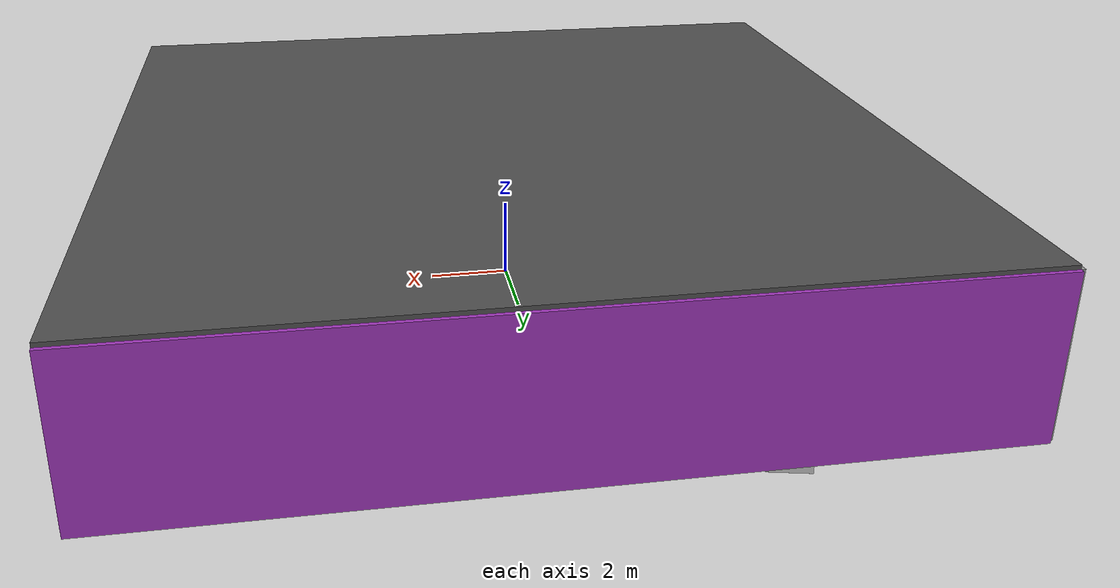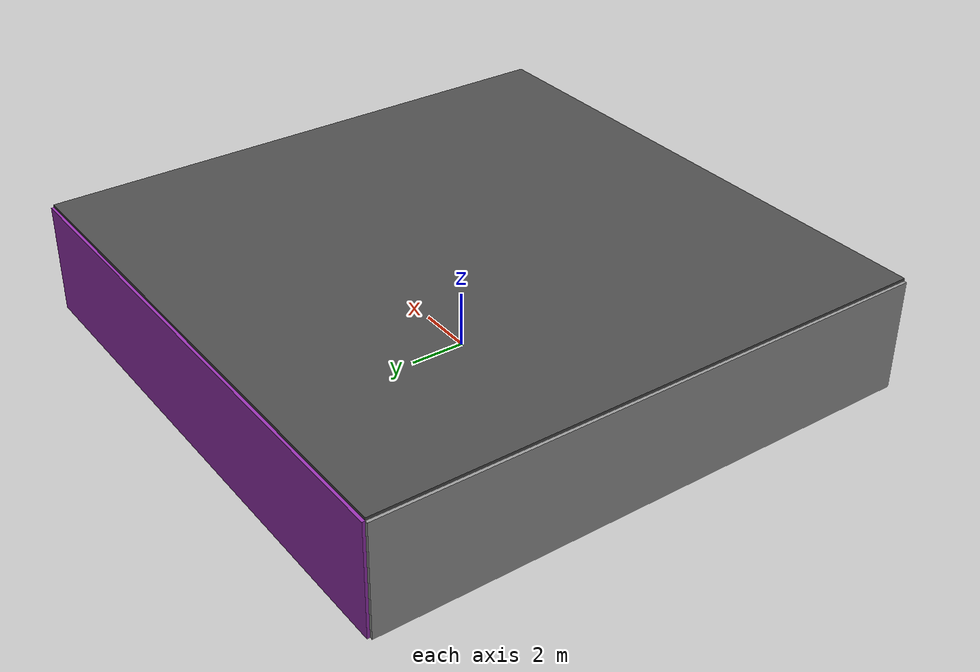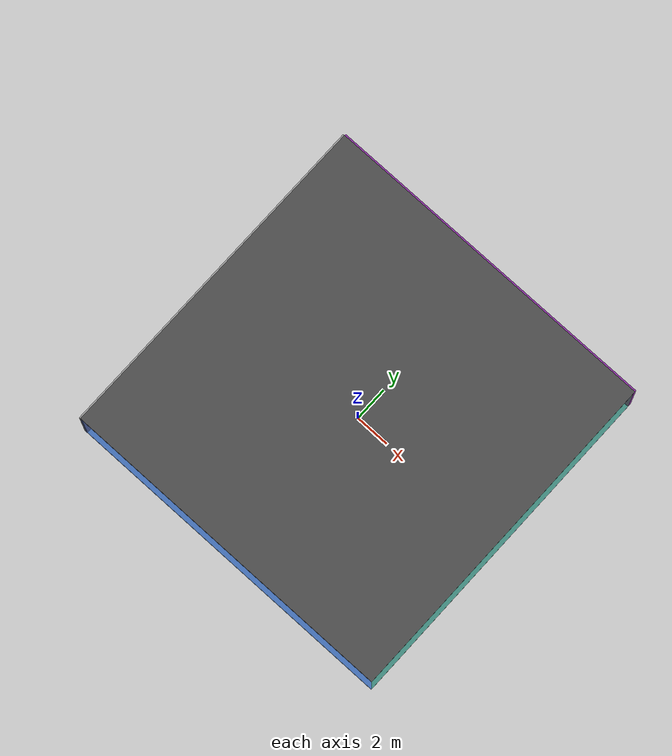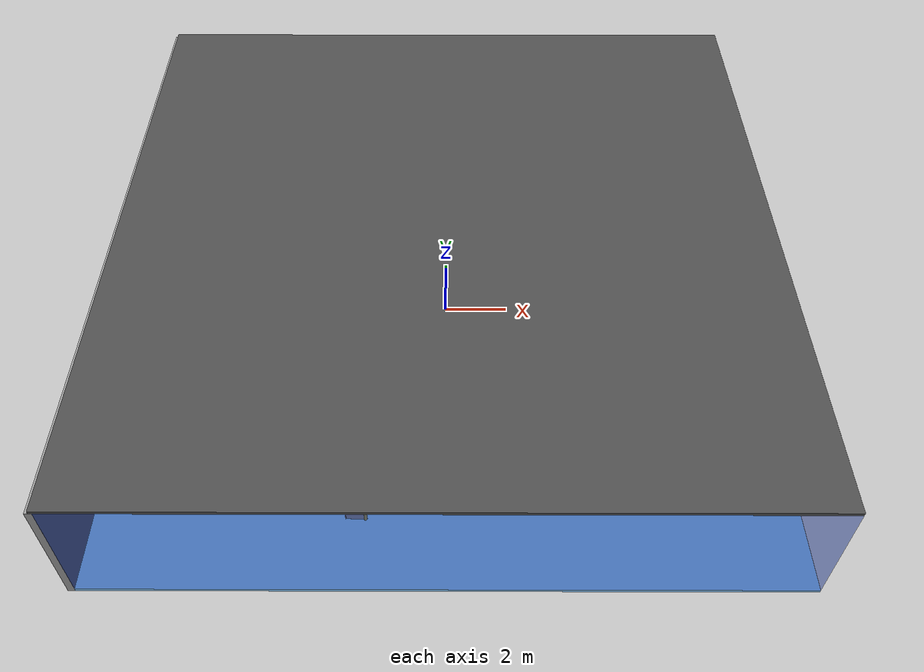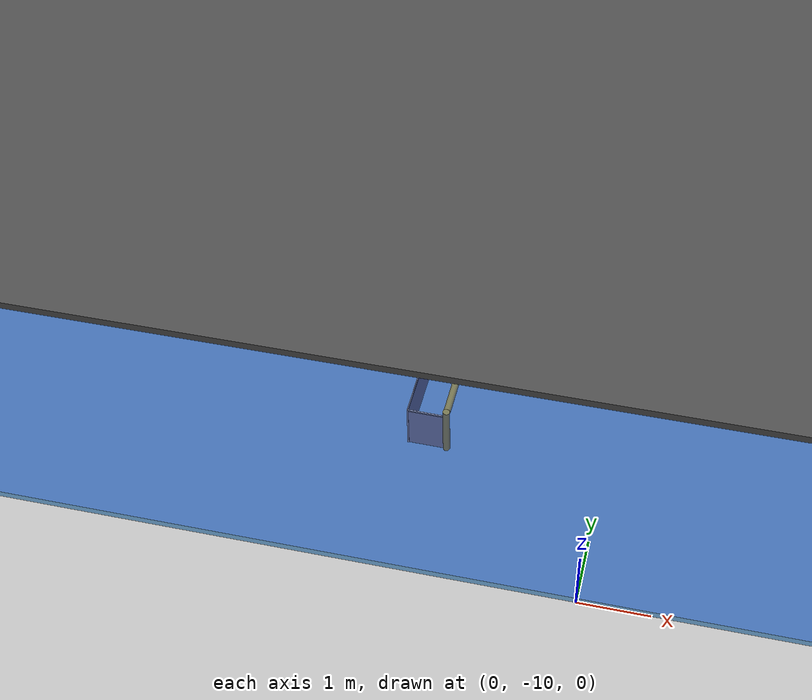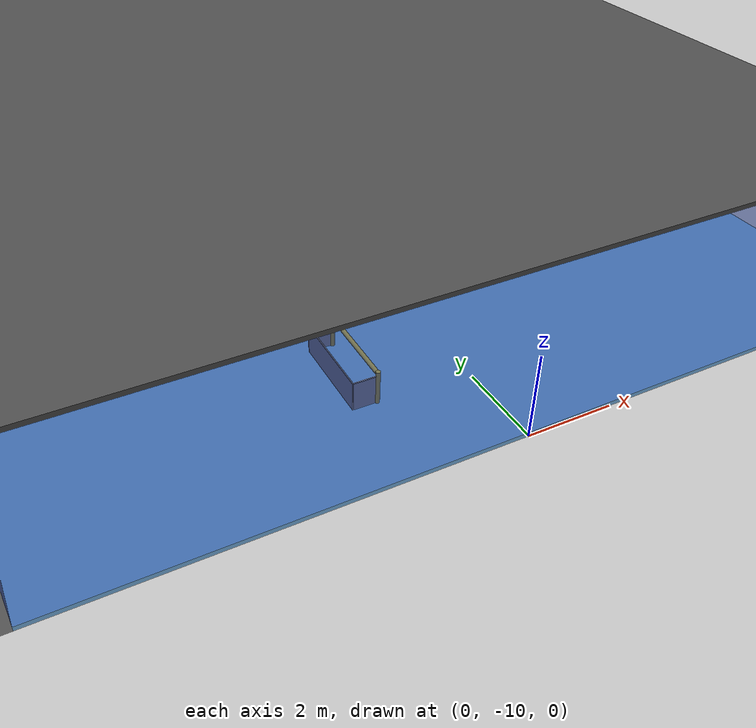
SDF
<sdf version="1.4">
 <world name="default">
  <physics type="ode">
   <max_step_size>0.001</max_step_size>
   <real_time_factor>1</real_time_factor>
   <real_time_update_rate>1000</real_time_update_rate>
   <gravity>0 0 -9.8</gravity>
  </physics>
  <scene><ambient>0.4 0.4 0.4 1</ambient><background>0.7 0.7 0.7 1</background><shadows>1</shadows></scene>
  <model name="Surrounding">
   <static>1</static>
   <link name="Ceiling">
    <collision name="Ceiling_Collision"><geometry><box><size>20 20 0.1</size></box></geometry></collision>
    <visual name="Ceiling_Visual">
     <geometry><box><size>20 20 0.1</size></box></geometry>
     <material>
      <script><uri>file://media/materials/scripts/gazebo.material</uri><name>Gazebo/DarkGrey</name></script>
     </material>
    </visual>
    <pose>0 0 4.05 0 0 0</pose>
   </link>
   <link name="Wall_South">
    <collision name="Wall_South_Collision">
     <geometry><box><size>20 0 4</size></box></geometry>
     <pose>0 0 2 0 -0 0</pose>
    </collision>
    <visual name="Wall_South_Visual">
     <pose>0 0 2 0 -0 0</pose>
     <geometry><box><size>20 0 4</size></box></geometry>
     <material>
      <script><uri>file://media/materials/scripts/gazebo.material</uri><name>Gazebo/BlueTransparent</name></script>
     </material>
    </visual>
    <velocity_decay><linear>0</linear><angular>0</angular></velocity_decay>
    <pose>0 -10 0 0 -0 0</pose>
   </link>
   <link name="Wall_East">
    <collision name="Wall_21_Collision">
     <geometry><box><size>20 0 4</size></box></geometry>
     <pose>0 0 2 0 -0 0</pose>
    </collision>
    <visual name="Wall_21_Visual">
     <pose>0 0 2 0 -0 0</pose>
     <geometry><box><size>20 0 4</size></box></geometry>
     <material>
      <script><uri>file://media/materials/scripts/gazebo.material</uri><name>Gazebo/GreenTransparent</name></script>
     </material>
    </visual>
    <velocity_decay><linear>0</linear><angular>0</angular></velocity_decay>
    <pose>10 0 0 0 -0 1.5708</pose>
   </link>
   <link name="Wall_North">
    <collision name="Wall_22_Collision">
     <geometry><box><size>20 0.2 4</size></box></geometry>
     <pose>0 0 2 0 -0 0</pose>
    </collision>
    <visual name="Wall_22_Visual">
     <pose>0 0 2 0 -0 0</pose>
     <geometry><box><size>20 0.2 4</size></box></geometry>
     <material>
      <script><uri>file://media/materials/scripts/gazebo.material</uri><name>Gazebo/PurpleGlow</name></script>
     </material>
    </visual>
    <velocity_decay><linear>0</linear><angular>0</angular></velocity_decay>
    <pose>0 10 0 0 -0 0</pose>
   </link>
   <link name="Wall_West">
    <collision name="Wall_23_Collision">
     <geometry><box><size>20 0.2 4</size></box></geometry>
     <pose>0 0 2 0 -0 0</pose>
    </collision>
    <visual name="Wall_23_Visual">
     <pose>0 0 2 0 -0 0</pose>
     <geometry><box><size>20 0.2 4</size></box></geometry>
     <material>
      <script><uri>file://media/materials/scripts/gazebo.material</uri><name>Gazebo/Grey</name></script>
     </material>
    </visual>
    <velocity_decay><linear>0</linear><angular>0</angular></velocity_decay>
    <pose>-10 0 0 0 0 -1.5708</pose>
   </link>
   <link name="Ground_link">
    <collision name="collision">
     <pose>0 0 .05 0 -0 0</pose>
     <geometry><box><size>20 20 0.1</size></box></geometry>
    </collision>
    <visual name="visual">
     <pose>0 0 .05 0 -0 0</pose>
     <geometry><box><size>20 20 0.1</size></box></geometry>
     <material>
      <script><uri>file://media/materials/scripts/gazebo.material</uri><name>Gazebo/SkyBlue</name></script>
     </material>
    </visual>
   </link>
   <static>1</static>
  </model>
  <spherical_coordinates>
   <surface_model>EARTH_WGS84</surface_model>
   <latitude_deg>0</latitude_deg>
   <longitude_deg>0</longitude_deg>
   <elevation>0</elevation>
   <heading_deg>0</heading_deg>
  </spherical_coordinates>
  <light name="lightball_0" type="diffuse">
   <diffuse>0.8 0.8 0.8 1</diffuse>
   <specular>0.2 0.2 0.2 1</specular>
   <attenuation>
    <range>100</range>
    <constant>0.7</constant>
    <linear>0.01</linear>
    <quadratic>0.001</quadratic>
   </attenuation>
   <direction>-0.5 0.1 -0.9</direction>
   <pose>-4.22813988172 -1.73900586341 2.72154755548 0 0 0</pose>
  </light>
  <light name="lightball_1" type="diffuse">
   <diffuse>0.8 0.8 0.8 1</diffuse>
   <specular>0.2 0.2 0.2 1</specular>
   <attenuation>
    <range>100</range>
    <constant>0.7</constant>
    <linear>0.01</linear>
    <quadratic>0.001</quadratic>
   </attenuation>
   <direction>-0.5 0.1 -0.9</direction>
   <pose>0.888543507834 4.00788179547 3.77428859515 0 0 0</pose>
  </light>
  <light name="lightball_2" type="diffuse">
   <diffuse>0.8 0.8 0.8 1</diffuse>
   <specular>0.2 0.2 0.2 1</specular>
   <attenuation>
    <range>100</range>
    <constant>0.7</constant>
    <linear>0.01</linear>
    <quadratic>0.001</quadratic>
   </attenuation>
   <direction>-0.5 0.1 -0.9</direction>
   <pose>8.64494735659 8.08473176739 2.4850163613 0 0 0</pose>
  </light>
  <light name="lightball_3" type="diffuse">
   <diffuse>0.8 0.8 0.8 1</diffuse>
   <specular>0.2 0.2 0.2 1</specular>
   <attenuation>
    <range>100</range>
    <constant>0.7</constant>
    <linear>0.01</linear>
    <quadratic>0.001</quadratic>
   </attenuation>
   <direction>-0.5 0.1 -0.9</direction>
   <pose>-9.63743110053 5.83631557524 1.47869506635 0 0 0</pose>
  </light>
  <include>
   <uri>model://construction_cone</uri>
   <pose>-7.1685668724 -4.73541877196 0 0 0 2.41016921398</pose>
  </include>
  <include><uri>model://textured_shapes</uri><pose>-4.92356476 7.60135342746 0 0 0 2.9249688028</pose></include>
  <include>
   <uri>model://robocup_3Dsim_goal</uri>
   <pose>-2.23328930737 -6.84326154028 0 0 0 3.13307768813</pose>
  </include>
  <include><uri>model://cabinet</uri><pose>1.47859871233 -4.57614663405 0 0 0 1.99680738236</pose></include>
 </world>
</sdf>

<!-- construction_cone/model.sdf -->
<sdf version="1.5">
  <model name="Construction Cone">
    <link name="link">
      <collision name="collision">
        <geometry>
          <mesh>
            <scale>10 10 10</scale>
            <uri>file://isr-testbed/construction_cone/meshes/construction_cone.dae</uri>
          </mesh>
        </geometry>
      </collision>
      <visual name="visual">
        <geometry>
          <mesh>
            <scale>10 10 10</scale>
            <uri>file://isr-testbed/construction_cone/meshes/construction_cone.dae</uri>
          </mesh>
        </geometry>
      </visual>
    </link>
  </model>
</sdf>

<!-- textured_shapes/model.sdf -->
<sdf version="1.6">
  <model name="textured_shapes">
    <pose>0 0 0.5 0 0 0</pose>
    <link name="box">
      <pose>0 -1.5 0 0 0 0</pose>
      <collision name="collision">
        <geometry>
          <box>
            <size>1 1 1</size>
          </box>
        </geometry>
      </collision>
      <visual name="visual">
        <geometry>
          <box>
            <size>1 1 1</size>
          </box>
        </geometry>
        <material>
          <script>
            <uri>model://../model_source/models/textured_shapes/materials/scripts</uri>
            <uri>model://../model_source/models/textured_shapes/materials/textures</uri>
            <name>TexturedShape/Squares</name>
          </script>
        </material>
      </visual>
    </link>
    <link name="sphere">
      <collision name="collision">
        <geometry>
          <sphere>
            <radius>0.5</radius>
          </sphere>
        </geometry>
      </collision>
      <visual name="visual">
        <geometry>
          <sphere>
            <radius>0.5</radius>
          </sphere>
        </geometry>
        <material>
          <script>
            <uri>model://../model_source/models/textured_shapes/materials/scripts</uri>
            <uri>model://../model_source/models/textured_shapes/materials/textures</uri>
            <name>TexturedShape/Squares</name>
          </script>
        </material>
      </visual>
    </link>
    <link name="cylinder">
      <pose>0 1.5 0 0 0 0</pose>
      <collision name="collision">
        <geometry>
          <cylinder>
            <radius>0.5</radius>
            <length>1</length>
          </cylinder>
        </geometry>
      </collision>
      <visual name="visual">
        <geometry>
          <cylinder>
            <radius>0.5</radius>
            <length>1</length>
          </cylinder>
        </geometry>
        <material>
          <script>
            <uri>model://../model_source/models/textured_shapes/materials/scripts</uri>
            <uri>model://../model_source/models/textured_shapes/materials/textures</uri>
            <name>TexturedShape/Squares</name>
          </script>
        </material>
      </visual>
    </link>
  </model>
</sdf>

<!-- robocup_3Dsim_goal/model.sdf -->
<sdf version="1.5">
  <model name="robocup_3d_goal">
    <static>true</static>
    <link name="left_post">
      <pose>0 1.05 0.45 0 0 0</pose>
      <collision name="collision">
        <geometry>
          <cylinder>
            <radius>0.05</radius>
            <length>0.9</length>
          </cylinder>
        </geometry>
      </collision>
      <visual name="visual">
        <geometry>
          <cylinder>
            <radius>0.05</radius>
            <length>0.9</length>
          </cylinder>
        </geometry>
        <material>
          <script>
            <uri>file://media/materials/scripts/gazebo.material</uri>
            <name>Gazebo/ZincYellow</name>
          </script>
        </material>
      </visual>
    </link>
    <link name="left_support_horiz_lower">
      <pose>0.30 1.05 0.01 0 0 0</pose>
      <collision name="collision">
        <geometry>
          <box>
            <size>0.50 0.02 0.02</size>
          </box>
        </geometry>
      </collision>
      <visual name="visual">
        <geometry>
          <box>
            <size>0.50 0.02 0.02</size>
          </box>
        </geometry>
        <material>
          <script>
            <uri>file://media/materials/scripts/gazebo.material</uri>
            <name>Gazebo/White</name>
          </script>
        </material>
      </visual>
    </link>
    <link name="left_support_horiz_upper">
      <pose>0.30 1.05 0.79 0 0 0</pose>
      <collision name="collision">
        <geometry>
          <box>
            <size>0.50 0.02 0.02</size>
          </box>
        </geometry>
      </collision>
      <visual name="visual">
        <geometry>
          <box>
            <size>0.50 0.02 0.02</size>
          </box>
        </geometry>
        <material>
          <script>
            <uri>file://media/materials/scripts/gazebo.material</uri>
            <name>Gazebo/White</name>
          </script>
        </material>
      </visual>
    </link>
    <link name="left_support_vertical">
      <pose>0.56 1.05 0.4 0 1.5708 0</pose>
      <collision name="collision">
        <geometry>
          <box>
            <size>0.80 0.02 0.02</size>
          </box>
        </geometry>
      </collision>
      <visual name="visual">
        <geometry>
          <box>
            <size>0.80 0.02 0.02</size>
          </box>
        </geometry>
        <material>
          <script>
            <uri>file://media/materials/scripts/gazebo.material</uri>
            <name>Gazebo/White</name>
          </script>
        </material>
      </visual>
    </link>
    <link name="right_support_horiz_lower">
      <pose>0.30 -1.05 0.01 0 0 0</pose>
      <collision name="collision">
        <geometry>
          <box>
            <size>0.50 0.02 0.02</size>
          </box>
        </geometry>
      </collision>
      <visual name="visual">
        <geometry>
          <box>
            <size>0.50 0.02 0.02</size>
          </box>
        </geometry>
        <material>
          <script>
            <uri>file://media/materials/scripts/gazebo.material</uri>
            <name>Gazebo/White</name>
          </script>
        </material>
      </visual>
    </link>
    <link name="right_support_horiz_upper">
      <pose>0.30 -1.05 0.79 0 0 0</pose>
      <collision name="collision">
        <geometry>
          <box>
            <size>0.50 0.02 0.02</size>
          </box>
        </geometry>
      </collision>
      <visual name="visual">
        <geometry>
          <box>
            <size>0.50 0.02 0.02</size>
          </box>
        </geometry>
        <material>
          <script>
            <uri>file://media/materials/scripts/gazebo.material</uri>
            <name>Gazebo/White</name>
          </script>
        </material>
      </visual>
    </link>
    <link name="right_support_vertical">
      <pose>0.56 -1.05 0.4 0 1.5708 0</pose>
      <collision name="collision">
        <geometry>
          <box>
            <size>0.80 0.02 0.02</size>
          </box>
        </geometry>
      </collision>
      <visual name="visual">
        <geometry>
          <box>
            <size>0.80 0.02 0.02</size>
          </box>
        </geometry>
        <material>
          <script>
            <uri>file://media/materials/scripts/gazebo.material</uri>
            <name>Gazebo/White</name>
          </script>
        </material>
      </visual>
    </link>
    <link name="center_support_horiz_lower">
      <pose>0.56 0 0.01 0 1.5708 0</pose>
      <collision name="collision">
        <geometry>
          <box>
            <size>0.02 2.08 0.02</size>
          </box>
        </geometry>
      </collision>
      <visual name="visual">
        <geometry>
          <box>
            <size>0.02 2.08 0.02</size>
          </box>
        </geometry>
        <material>
          <script>
            <uri>file://media/materials/scripts/gazebo.material</uri>
            <name>Gazebo/White</name>
          </script>
        </material>
      </visual>
    </link>
    <link name="center_support_horiz_upper">
      <pose>0.56 0 0.79 0 1.5708 0</pose>
      <collision name="collision">
        <geometry>
          <box>
            <size>0.02 2.08 0.02</size>
          </box>
        </geometry>
      </collision>
      <visual name="visual">
        <geometry>
          <box>
            <size>0.02 2.08 0.02</size>
          </box>
        </geometry>
        <material>
          <script>
            <uri>file://media/materials/scripts/gazebo.material</uri>
            <name>Gazebo/White</name>
          </script>
        </material>
      </visual>
    </link>
    <link name="right_post">
      <pose>0 -1.05 0.45 0 0 0</pose>
      <collision name="collision">
        <geometry>
          <cylinder>
            <radius>0.05</radius>
            <length>0.9</length>
          </cylinder>
        </geometry>
      </collision>
      <visual name="visual">
        <geometry>
          <cylinder>
            <radius>0.05</radius>
            <length>0.9</length>
          </cylinder>
        </geometry>
        <material>
          <script>
            <uri>file://media/materials/scripts/gazebo.material</uri>
            <name>Gazebo/ZincYellow</name>
          </script>
        </material>
      </visual>
    </link>
    <link name="crossbar">
      <pose>0 0 0.85 1.57 1.57 0</pose>
      <collision name="collision">
        <geometry>
          <cylinder>
            <radius>0.05</radius>
            <length>2.0</length>
          </cylinder>
        </geometry>
      </collision>
      <visual name="visual">
        <geometry>
          <cylinder>
            <radius>0.05</radius>
            <length>2.0</length>
          </cylinder>
        </geometry>
        <material>
          <script>
            <uri>file://media/materials/scripts/gazebo.material</uri>
            <name>Gazebo/ZincYellow</name>
          </script>
        </material>
      </visual>
    </link>
    <link name="center_net">
      <pose>0.56 0 0.40 0 0 0</pose>
      <collision name="collision">
        <geometry>
          <box>
            <size>0.01 2.1 0.80</size>
          </box>
        </geometry>
      </collision>
      <visual name="visual">
        <geometry>
          <box>
            <size>0.01 2.1 0.80</size>
          </box>
        </geometry>
        <material>
          <script>
            <uri>model://../model_source/models/robocup09_spl_field/materials/scripts/</uri>
            <uri>model://../model_source/models/robocup09_spl_field/materials/textures/</uri>
            <name>RoboCup/Net</name>
          </script>
        </material>
      </visual>
    </link>
    <link name="left_net">
      <pose>0.30 1.05 0.40 0 0 0</pose>
      <collision name="collision">
        <geometry>
          <box>
            <size>0.50 0.01 0.76</size>
          </box>
        </geometry>
      </collision>
      <visual name="visual">
        <geometry>
          <box>
            <size>0.50 0.01 0.76</size>
          </box>
        </geometry>
        <material>
          <script>
            <uri>model://../model_source/models/robocup09_spl_field/materials/scripts/</uri>
            <uri>model://../model_source/models/robocup09_spl_field/materials/textures/</uri>
            <name>RoboCup/Net</name>
          </script>
        </material>
      </visual>
    </link>
    <link name="right_net">
      <pose>0.30 -1.05 0.40 0 0 0</pose>
      <collision name="collision">
        <geometry>
          <box>
            <size>0.50 0.01 0.76</size>
          </box>
        </geometry>
      </collision>
      <visual name="visual">
        <geometry>
          <box>
            <size>0.50 0.01 0.76</size>
          </box>
        </geometry>
        <material>
          <script>
            <uri>model://../model_source/models/robocup09_spl_field/materials/scripts/</uri>
            <uri>model://../model_source/models/robocup09_spl_field/materials/textures/</uri>
            <name>RoboCup/Net</name>
          </script>
        </material>
      </visual>
    </link>
  </model>
</sdf>

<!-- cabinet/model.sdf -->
<sdf version="1.5">
  <model name="cabinet">
    <static>true</static>
    <link name="cabinet_bottom_plate">
      <inertial>
        <pose>0 0 -1 0 0 0</pose>
        <inertia>
          <ixx>2.050000</ixx>
          <ixy>0</ixy>
          <ixz>0</ixz>
          <iyy>2.050000</iyy>
          <iyz>0</iyz>
          <izz>2.050000</izz>
        </inertia>
        <mass>25.000000</mass>
      </inertial>
      <collision name="cabinet_bottom_plate_geom">
        <pose>0 0 0.010000 0 0 0</pose>
        <geometry>
          <box>
            <size>0.450000 0.450000 0.020000</size>
          </box>
        </geometry>
      </collision>
      <visual name="cabinet_bottom_plate_geom_visual">
        <pose>0 0 0.010000 0 0 0</pose>
        <geometry>
          <box>
            <size>0.450000 0.450000 0.020000</size>
          </box>
        </geometry>
        <material>
          <script>
            <uri>model://media/materials/scripts/gazebo.material</uri>
            <name>Gazebo/Wood</name>
          </script>
        </material>
      </visual>
      <collision name="cabinet_bottom_plate_geom_cabinet_back_plate">
        <pose>0.235000 0 0.510000 0 0 0</pose>
        <geometry>
          <box>
            <size>0.020000 0.450000 1.020000</size>
          </box>
        </geometry>
      </collision>
      <visual name="cabinet_bottom_plate_geom_cabinet_back_plate_visual">
        <pose>0.235000 0 0.510000 0 0 0</pose>
        <geometry>
          <box>
            <size>0.020000 0.450000 1.020000</size>
          </box>
        </geometry>
        <material>
          <script>
            <uri>model://media/materials/scripts/gazebo.material</uri>
            <name>Gazebo/Wood</name>
          </script>
        </material>
      </visual>
      <collision name="cabinet_bottom_plate_geom_cabinet_left_plate">
        <pose>0 0.235000 0.510000 0 0 0</pose>
        <geometry>
          <box>
            <size>0.450000 0.020000 1.020000</size>
          </box>
        </geometry>
      </collision>
      <visual name="cabinet_bottom_plate_geom_cabinet_left_plate_visual">
        <pose>0 0.235000 0.510000 0 0 0</pose>
        <geometry>
          <box>
            <size>0.450000 0.020000 1.020000</size>
          </box>
        </geometry>
        <material>
          <script>
            <uri>model://media/materials/scripts/gazebo.material</uri>
            <name>Gazebo/Wood</name>
          </script>
        </material>
      </visual>
      <collision name="cabinet_bottom_plate_geom_cabinet_middle_plate">
        <pose>0 0 0.510000 0 0 0</pose>
        <geometry>
          <box>
            <size>0.450000 0.450000 0.020000</size>
          </box>
        </geometry>
      </collision>
      <visual name="cabinet_bottom_plate_geom_cabinet_middle_plate_visual">
        <pose>0 0 0.510000 0 0 0</pose>
        <geometry>
          <box>
            <size>0.450000 0.450000 0.020000</size>
          </box>
        </geometry>
        <material>
          <script>
            <uri>model://media/materials/scripts/gazebo.material</uri>
            <name>Gazebo/Wood</name>
          </script>
        </material>
      </visual>
      <collision name="cabinet_bottom_plate_geom_cabinet_right_plate">
        <pose>0 -0.235000 0.510000 0 0 0</pose>
        <geometry>
          <box>
            <size>0.450000 0.020000 1.020000</size>
          </box>
        </geometry>
      </collision>
      <visual name="cabinet_bottom_plate_geom_cabinet_right_plate_visual">
        <pose>0 -0.235000 0.510000 0 0 0</pose>
        <geometry>
          <box>
            <size>0.450000 0.020000 1.020000</size>
          </box>
        </geometry>
        <material>
          <script>
            <uri>model://media/materials/scripts/gazebo.material</uri>
            <name>Gazebo/Wood</name>
          </script>
        </material>
      </visual>
      <collision name="cabinet_bottom_plate_geom_cabinet_top_plate">
        <pose>0 0 1.010000 0 0 0</pose>
        <geometry>
          <box>
            <size>0.450000 0.450000 0.020000</size>
          </box>
        </geometry>
      </collision>
      <visual name="cabinet_bottom_plate_geom_cabinet_top_plate_visual">
        <pose>0 0 1.010000 0 0 0</pose>
        <geometry>
          <box>
            <size>0.450000 0.450000 0.020000</size>
          </box>
        </geometry>
        <material>
          <script>
            <uri>model://media/materials/scripts/gazebo.material</uri>
            <name>Gazebo/Wood</name>
          </script>
        </material>
      </visual>
    </link>
  </model>
</sdf>
